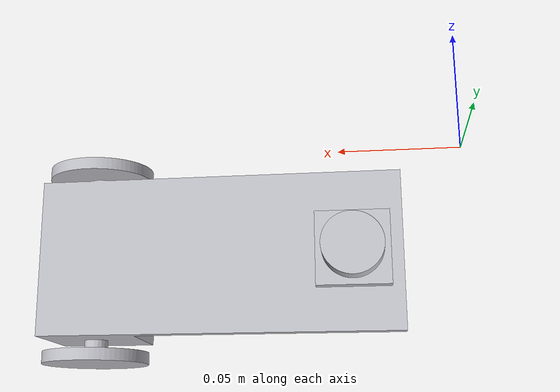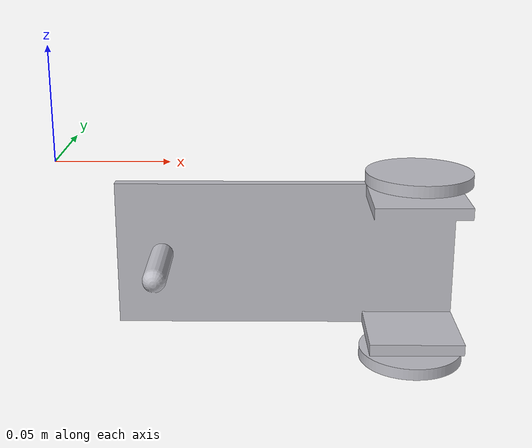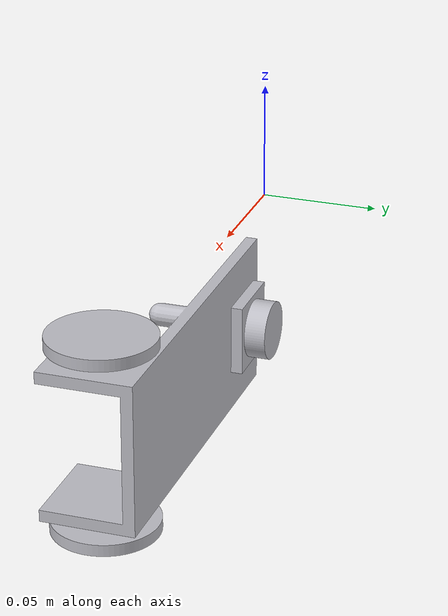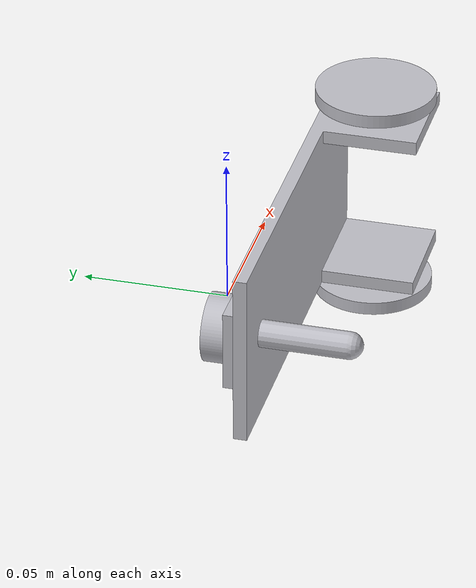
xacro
<?xml version="1.0" ?>
<robot name="(Unsaved)" xmlns:xacro="http://www.ros.org/wiki/xacro">

<xacro:include filename="$(find (Unsaved)_description)/urdf/materials.xacro" />
<xacro:include filename="$(find (Unsaved)_description)/urdf/(Unsaved).trans" />
<xacro:include filename="$(find (Unsaved)_description)/urdf/(Unsaved).gazebo" />
<link name="base_link">
  <inertial>
    <origin xyz="0.1099699446546728 -0.002774626814158729 -0.04250000000000002" rpy="0 0 0"/>
    <mass value="0.520537202641438"/>
    <inertia ixx="0.000296" iyy="0.001339" izz="0.001152" ixy="7.5e-05" iyz="-0.0" ixz="-0.0"/>
  </inertial>
  <visual>
    <origin xyz="0 0 0" rpy="0 0 0"/>
    <geometry>
      <mesh filename="package://(Unsaved)_description/meshes/base_link.stl" scale="0.001 0.001 0.001"/>
    </geometry>
    <material name="silver"/>
  </visual>
  <collision>
    <origin xyz="0 0 0" rpy="0 0 0"/>
    <geometry>
      <mesh filename="package://(Unsaved)_description/meshes/base_link.stl" scale="0.001 0.001 0.001"/>
    </geometry>
  </collision>
</link>

<link name="leftwheel_1">
  <inertial>
    <origin xyz="-1.3736157952748407e-07 0.0 0.0025" rpy="0 0 0"/>
    <mass value="0.06242442777453344"/>
    <inertia ixx="8e-06" iyy="8e-06" izz="1.6e-05" ixy="0.0" iyz="0.0" ixz="0.0"/>
  </inertial>
  <visual>
    <origin xyz="-0.155366 0.015 0.005" rpy="0 0 0"/>
    <geometry>
      <mesh filename="package://(Unsaved)_description/meshes/leftwheel_1.stl" scale="0.001 0.001 0.001"/>
    </geometry>
    <material name="silver"/>
  </visual>
  <collision>
    <origin xyz="-0.155366 0.015 0.005" rpy="0 0 0"/>
    <geometry>
      <mesh filename="package://(Unsaved)_description/meshes/leftwheel_1.stl" scale="0.001 0.001 0.001"/>
    </geometry>
  </collision>
</link>

<link name="rightwheel_1">
  <inertial>
    <origin xyz="2.3096799750543795e-09 -2.235174233200521e-10 -0.0025000000000000022" rpy="0 0 0"/>
    <mass value="0.06242442777453344"/>
    <inertia ixx="8e-06" iyy="8e-06" izz="1.6e-05" ixy="0.0" iyz="0.0" ixz="0.0"/>
  </inertial>
  <visual>
    <origin xyz="-0.155 0.015 0.08" rpy="0 0 0"/>
    <geometry>
      <mesh filename="package://(Unsaved)_description/meshes/rightwheel_1.stl" scale="0.001 0.001 0.001"/>
    </geometry>
    <material name="silver"/>
  </visual>
  <collision>
    <origin xyz="-0.155 0.015 0.08" rpy="0 0 0"/>
    <geometry>
      <mesh filename="package://(Unsaved)_description/meshes/rightwheel_1.stl" scale="0.001 0.001 0.001"/>
    </geometry>
  </collision>
</link>

<link name="mount_1">
  <inertial>
    <origin xyz="0.019999999999999997 0.0024999999999999996 0.0" rpy="0 0 0"/>
    <mass value="0.035324999999999995"/>
    <inertia ixx="3e-06" iyy="5e-06" izz="3e-06" ixy="0.0" iyz="0.0" ixz="-0.0"/>
  </inertial>
  <visual>
    <origin xyz="-0.025 -0.005 0.0425" rpy="0 0 0"/>
    <geometry>
      <mesh filename="package://(Unsaved)_description/meshes/mount_1.stl" scale="0.001 0.001 0.001"/>
    </geometry>
    <material name="silver"/>
  </visual>
  <collision>
    <origin xyz="-0.025 -0.005 0.0425" rpy="0 0 0"/>
    <geometry>
      <mesh filename="package://(Unsaved)_description/meshes/mount_1.stl" scale="0.001 0.001 0.001"/>
    </geometry>
  </collision>
</link>

<link name="lidar_1">
  <inertial>
    <origin xyz="-3.469446951953614e-17 0.004499999999999999 -6.938893903907228e-18" rpy="0 0 0"/>
    <mass value="0.03468023765251854"/>
    <inertia ixx="2e-06" iyy="3e-06" izz="2e-06" ixy="0.0" iyz="-0.0" ixz="0.0"/>
  </inertial>
  <visual>
    <origin xyz="-0.045 -0.01 0.0425" rpy="0 0 0"/>
    <geometry>
      <mesh filename="package://(Unsaved)_description/meshes/lidar_1.stl" scale="0.001 0.001 0.001"/>
    </geometry>
    <material name="silver"/>
  </visual>
  <collision>
    <origin xyz="-0.045 -0.01 0.0425" rpy="0 0 0"/>
    <geometry>
      <mesh filename="package://(Unsaved)_description/meshes/lidar_1.stl" scale="0.001 0.001 0.001"/>
    </geometry>
  </collision>
</link>

<joint name="Rev1" type="continuous">
  <origin xyz="0.155366 -0.015 -0.005" rpy="0 0 0"/>
  <parent link="base_link"/>
  <child link="leftwheel_1"/>
  <axis xyz="0.0 0.0 1.0"/>
</joint>

<joint name="Rev2" type="continuous">
  <origin xyz="0.155 -0.015 -0.08" rpy="0 0 0"/>
  <parent link="base_link"/>
  <child link="rightwheel_1"/>
  <axis xyz="0.0 0.0 1.0"/>
</joint>

<joint name="Rigid3" type="fixed">
  <origin xyz="0.025 0.005 -0.0425" rpy="0 0 0"/>
  <parent link="base_link"/>
  <child link="mount_1"/>
</joint>

<joint name="Rev4" type="continuous">
  <origin xyz="0.02 0.005 0.0" rpy="0 0 0"/>
  <parent link="mount_1"/>
  <child link="lidar_1"/>
  <axis xyz="0.0 1.0 0.0"/>
</joint>

</robot>

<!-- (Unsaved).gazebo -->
<robot name="(Unsaved)" xmlns:xacro="http://www.ros.org/wiki/xacro" >

<xacro:property name="body_color" value="Gazebo/Silver" />

<gazebo>
  <plugin name="control" filename="libgazebo_ros_control.so"/>
</gazebo>
<gazebo reference="base_link">
  <material>${body_color}</material>
  <mu1>0.2</mu1>
  <mu2>0.2</mu2>
  <selfCollide>true</selfCollide>
  <gravity>true</gravity>
</gazebo>

<gazebo reference="leftwheel_1">
  <material>${body_color}</material>
  <mu1>0.2</mu1>
  <mu2>0.2</mu2>
  <selfCollide>true</selfCollide>
</gazebo>

<gazebo reference="rightwheel_1">
  <material>${body_color}</material>
  <mu1>0.2</mu1>
  <mu2>0.2</mu2>
  <selfCollide>true</selfCollide>
</gazebo>

<gazebo reference="mount_1">
  <material>${body_color}</material>
  <mu1>0.2</mu1>
  <mu2>0.2</mu2>
  <selfCollide>true</selfCollide>
</gazebo>

<gazebo reference="lidar_1">
  <material>${body_color}</material>
  <mu1>0.2</mu1>
  <mu2>0.2</mu2>
  <selfCollide>true</selfCollide>
</gazebo>
<gazebo>
  <plugin name="differential_drive_controller" filename="libgazebo_ros_diff_drive.so">

    <!-- Plugin update rate in Hz -->
    <updateRate>${update_rate}</updateRate>

    <!-- Name of left joint, defaults to `left_joint` -->
    <leftJoint>Rev1</leftJoint>

    <!-- Name of right joint, defaults to `right_joint` -->
    <rightJoint>Rev2</rightJoint>

    <!-- The distance from the center of one wheel to the other, in meters, defaults to 0.34 m -->
    <wheelSeparation>0.5380</wheelSeparation>

    <!-- Diameter of the wheels, in meters, defaults to 0.15 m -->
    <wheelDiameter>0.2410</wheelDiameter>

    <!-- Wheel acceleration, in rad/s^2, defaults to 0.0 rad/s^2 -->
    <wheelAcceleration>1.0</wheelAcceleration>

    <!-- Maximum torque which the wheels can produce, in Nm, defaults to 5 Nm -->
    <wheelTorque>20</wheelTorque>

    <!-- Topic to receive geometry_msgs/Twist message commands, defaults to `cmd_vel` -->
    <commandTopic>cmd_vel</commandTopic>

    <!-- Topic to publish nav_msgs/Odometry messages, defaults to `odom` -->
    <odometryTopic>odom</odometryTopic>

    <!-- Odometry frame, defaults to `odom` -->
    <odometryFrame>odom</odometryFrame>

    <!-- Robot frame to calculate odometry from, defaults to `base_footprint` -->
    <robotBaseFrame>base_link</robotBaseFrame>

    <!-- Odometry source, 0 for ENCODER, 1 for WORLD, defaults to WORLD -->
    <odometrySource>1</odometrySource>

    <!-- Set to true to publish transforms for the wheel links, defaults to false -->
    <publishWheelTF>true</publishWheelTF>

    <!-- Set to true to publish transforms for the odometry, defaults to true -->
    <publishOdom>true</publishOdom>

    <!-- Set to true to publish sensor_msgs/JointState on /joint_states for the wheel joints, defaults to false -->
    <publishWheelJointState>true</publishWheelJointState>

    <!-- Set to true to swap right and left wheels, defaults to true -->
    <legacyMode>false</legacyMode>
  </plugin>
</gazebo>
</robot>
